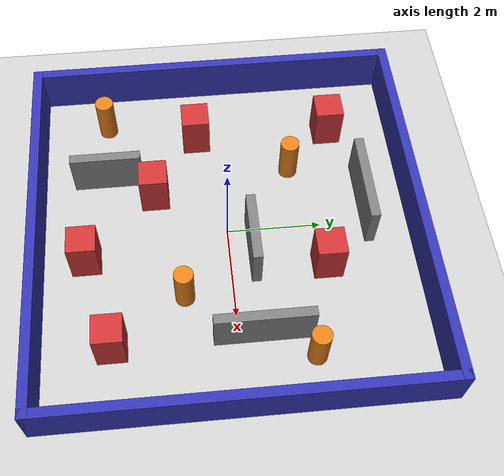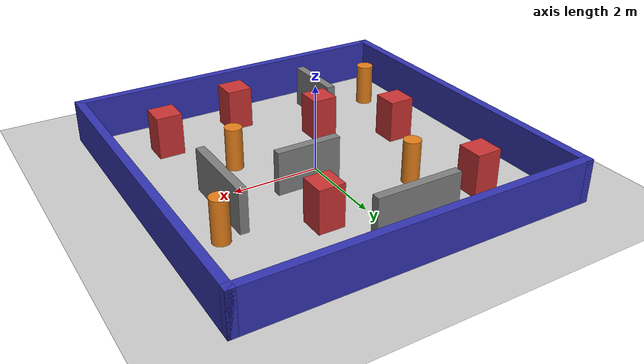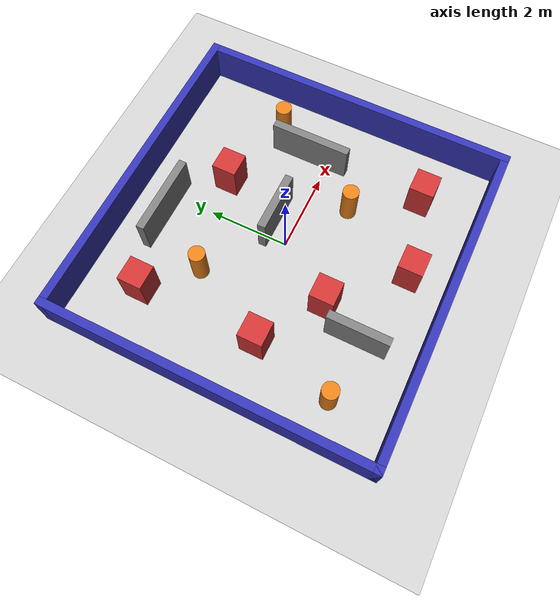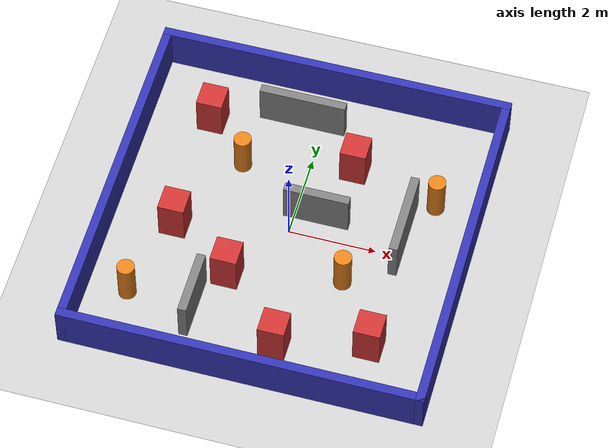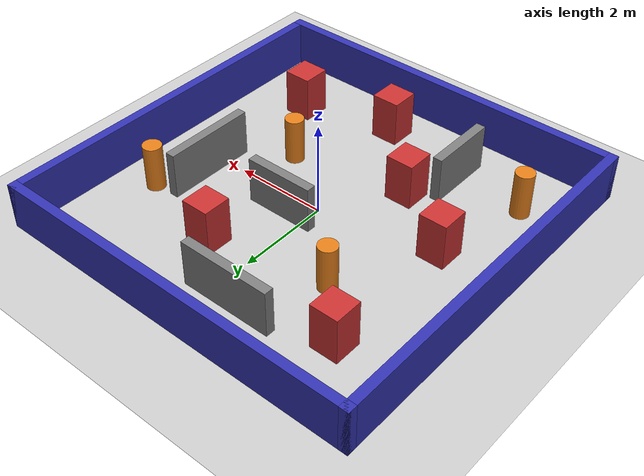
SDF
<?xml version="1.0" ?>
<sdf version="1.6">
  <world name="monde_obstacles">

    <include><uri>model://sun</uri></include>
    <include><uri>model://ground_plane</uri></include>

    <!-- ===== 4 MURS EXTERIEURS (8x8m) ===== -->

    <model name="mur_bas">
      <static>true</static>
      <pose>0 -4 0.5 0 0 0</pose>
      <link name="link">
        <collision name="collision"><geometry><box><size>8.2 0.2 1</size></box></geometry></collision>
        <visual name="visual">
          <geometry><box><size>8.2 0.2 1</size></box></geometry>
          <material><ambient>0.2 0.2 0.7 1</ambient></material>
        </visual>
      </link>
    </model>

    <model name="mur_haut">
      <static>true</static>
      <pose>0 4 0.5 0 0 0</pose>
      <link name="link">
        <collision name="collision"><geometry><box><size>8.2 0.2 1</size></box></geometry></collision>
        <visual name="visual">
          <geometry><box><size>8.2 0.2 1</size></box></geometry>
          <material><ambient>0.2 0.2 0.7 1</ambient></material>
        </visual>
      </link>
    </model>

    <model name="mur_gauche">
      <static>true</static>
      <pose>-4 0 0.5 0 0 0</pose>
      <link name="link">
        <collision name="collision"><geometry><box><size>0.2 8.2 1</size></box></geometry></collision>
        <visual name="visual">
          <geometry><box><size>0.2 8.2 1</size></box></geometry>
          <material><ambient>0.2 0.2 0.7 1</ambient></material>
        </visual>
      </link>
    </model>

    <model name="mur_droite">
      <static>true</static>
      <pose>4 0 0.5 0 0 0</pose>
      <link name="link">
        <collision name="collision"><geometry><box><size>0.2 8.2 1</size></box></geometry></collision>
        <visual name="visual">
          <geometry><box><size>0.2 8.2 1</size></box></geometry>
          <material><ambient>0.2 0.2 0.7 1</ambient></material>
        </visual>
      </link>
    </model>

    <!-- ===== OBSTACLES INTERIEURS ===== -->

    <!-- Boites carrees (rouge) -->
    <model name="boite_1">
      <static>true</static>
      <pose>-2.5 2.5 0.5 0 0 0</pose>
      <link name="link">
        <collision name="collision"><geometry><box><size>0.6 0.6 1</size></box></geometry></collision>
        <visual name="visual">
          <geometry><box><size>0.6 0.6 1</size></box></geometry>
          <material><ambient>0.8 0.2 0.2 1</ambient></material>
        </visual>
      </link>
    </model>

    <model name="boite_2">
      <static>true</static>
      <pose>1.0 2.0 0.5 0 0 0</pose>
      <link name="link">
        <collision name="collision"><geometry><box><size>0.6 0.6 1</size></box></geometry></collision>
        <visual name="visual">
          <geometry><box><size>0.6 0.6 1</size></box></geometry>
          <material><ambient>0.8 0.2 0.2 1</ambient></material>
        </visual>
      </link>
    </model>

    <model name="boite_3">
      <static>true</static>
      <pose>-1.0 -1.5 0.5 0 0 0</pose>
      <link name="link">
        <collision name="collision"><geometry><box><size>0.6 0.6 1</size></box></geometry></collision>
        <visual name="visual">
          <geometry><box><size>0.6 0.6 1</size></box></geometry>
          <material><ambient>0.8 0.2 0.2 1</ambient></material>
        </visual>
      </link>
    </model>

    <model name="boite_4">
      <static>true</static>
      <pose>2.5 -2.5 0.5 0 0 0</pose>
      <link name="link">
        <collision name="collision"><geometry><box><size>0.6 0.6 1</size></box></geometry></collision>
        <visual name="visual">
          <geometry><box><size>0.6 0.6 1</size></box></geometry>
          <material><ambient>0.8 0.2 0.2 1</ambient></material>
        </visual>
      </link>
    </model>

    <model name="boite_5">
      <static>true</static>
      <pose>-2.5 -0.5 0.5 0 0 0</pose>
      <link name="link">
        <collision name="collision"><geometry><box><size>0.6 0.6 1</size></box></geometry></collision>
        <visual name="visual">
          <geometry><box><size>0.6 0.6 1</size></box></geometry>
          <material><ambient>0.8 0.2 0.2 1</ambient></material>
        </visual>
      </link>
    </model>

    <model name="boite_6">
      <static>true</static>
      <pose>0.5 -3.0 0.5 0 0 0</pose>
      <link name="link">
        <collision name="collision"><geometry><box><size>0.6 0.6 1</size></box></geometry></collision>
        <visual name="visual">
          <geometry><box><size>0.6 0.6 1</size></box></geometry>
          <material><ambient>0.8 0.2 0.2 1</ambient></material>
        </visual>
      </link>
    </model>

    <!-- Piliers cylindriques (orange) -->
    <model name="pilier_1">
      <static>true</static>
      <pose>-1.5 1.5 0.5 0 0 0</pose>
      <link name="link">
        <collision name="collision"><geometry><cylinder><radius>0.2</radius><length>1</length></cylinder></geometry></collision>
        <visual name="visual">
          <geometry><cylinder><radius>0.2</radius><length>1</length></cylinder></geometry>
          <material><ambient>0.9 0.5 0.1 1</ambient></material>
        </visual>
      </link>
    </model>

    <model name="pilier_2">
      <static>true</static>
      <pose>1.5 -1.0 0.5 0 0 0</pose>
      <link name="link">
        <collision name="collision"><geometry><cylinder><radius>0.2</radius><length>1</length></cylinder></geometry></collision>
        <visual name="visual">
          <geometry><cylinder><radius>0.2</radius><length>1</length></cylinder></geometry>
          <material><ambient>0.9 0.5 0.1 1</ambient></material>
        </visual>
      </link>
    </model>

    <model name="pilier_3">
      <static>true</static>
      <pose>3.0 1.5 0.5 0 0 0</pose>
      <link name="link">
        <collision name="collision"><geometry><cylinder><radius>0.2</radius><length>1</length></cylinder></geometry></collision>
        <visual name="visual">
          <geometry><cylinder><radius>0.2</radius><length>1</length></cylinder></geometry>
          <material><ambient>0.9 0.5 0.1 1</ambient></material>
        </visual>
      </link>
    </model>

    <model name="pilier_4">
      <static>true</static>
      <pose>-3.0 -2.5 0.5 0 0 0</pose>
      <link name="link">
        <collision name="collision"><geometry><cylinder><radius>0.2</radius><length>1</length></cylinder></geometry></collision>
        <visual name="visual">
          <geometry><cylinder><radius>0.2</radius><length>1</length></cylinder></geometry>
          <material><ambient>0.9 0.5 0.1 1</ambient></material>
        </visual>
      </link>
    </model>

    <!-- Murs courts interieurs (gris) -->
    <model name="mur_int_1">
      <static>true</static>
      <pose>0.5 0.5 0.5 0 0 0</pose>
      <link name="link">
        <collision name="collision"><geometry><box><size>1.5 0.2 1</size></box></geometry></collision>
        <visual name="visual">
          <geometry><box><size>1.5 0.2 1</size></box></geometry>
          <material><ambient>0.5 0.5 0.5 1</ambient></material>
        </visual>
      </link>
    </model>

    <model name="mur_int_2">
      <static>true</static>
      <pose>-1.5 -2.5 0.5 0 0 0</pose>
      <link name="link">
        <collision name="collision"><geometry><box><size>0.2 1.5 1</size></box></geometry></collision>
        <visual name="visual">
          <geometry><box><size>0.2 1.5 1</size></box></geometry>
          <material><ambient>0.5 0.5 0.5 1</ambient></material>
        </visual>
      </link>
    </model>

    <model name="mur_int_3">
      <static>true</static>
      <pose>2.5 0.5 0.5 0 0 0</pose>
      <link name="link">
        <collision name="collision"><geometry><box><size>0.2 2.0 1</size></box></geometry></collision>
        <visual name="visual">
          <geometry><box><size>0.2 2.0 1</size></box></geometry>
          <material><ambient>0.5 0.5 0.5 1</ambient></material>
        </visual>
      </link>
    </model>

    <model name="mur_int_4">
      <static>true</static>
      <pose>-0.5 3.0 0.5 0 0 0</pose>
      <link name="link">
        <collision name="collision"><geometry><box><size>2.0 0.2 1</size></box></geometry></collision>
        <visual name="visual">
          <geometry><box><size>2.0 0.2 1</size></box></geometry>
          <material><ambient>0.5 0.5 0.5 1</ambient></material>
        </visual>
      </link>
    </model>

  </world>
</sdf>
